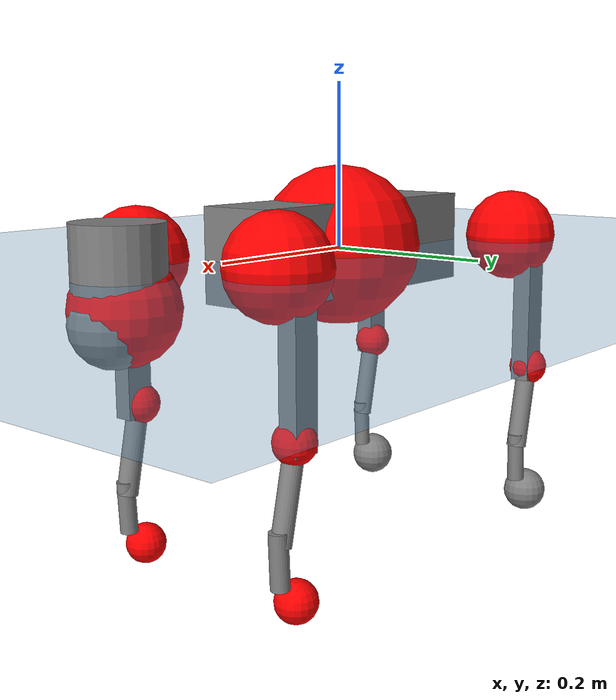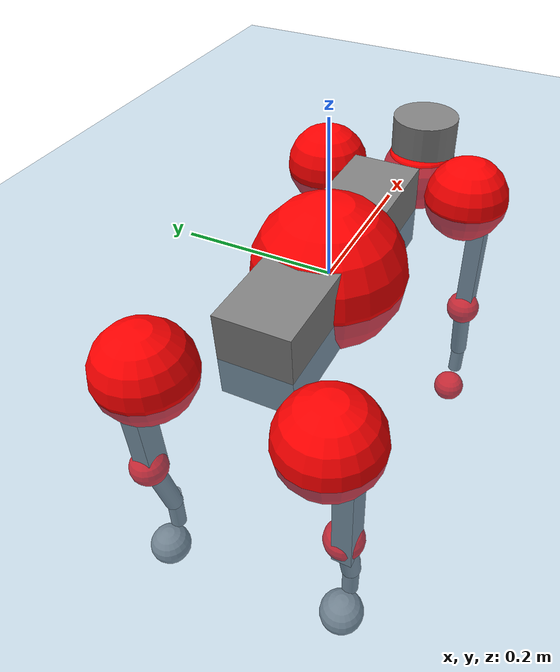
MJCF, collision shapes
<mujoco model="go2">
  <compiler angle="radian" assetdir="assets" balanceinertia="true" inertiafromgeom="false"/>

  <option timestep="0.005" density="1.2" viscosity="2e-05"/>

  <size nkey="1"/>

  <visual>
    <quality shadowsize="8192"/>
    <map shadowclip="0.5"/>
  </visual>

  <default>
    <default class="/">
      <geom contype="0" conaffinity="0" group="1" solref="-1000 -80"/>
      <site size="0.01 0.005 0.005" group="5"/>
      <general forcelimited="true" biastype="affine" gainprm="20" biasprm="0 -20 -0.5"/>
      <default class="go2">
        <joint armature="0.01" damping="0.01" frictionloss="0.2"/>
        <geom condim="1" margin="0.001"/>
        <default class="visual">
          <geom type="mesh" group="2"/>
        </default>
        <default class="collision">
          <geom group="3"/>
          <default class="foot">
            <geom size="0.022 0 0" condim="6" priority="1" friction="0.8 0.02 0.01" solimp="0.015 1 0.022"/>
          </default>
        </default>
        <default class="reward_collision_sphere">
          <geom group="5" rgba="1 0 0 1"/>
        </default>
      </default>
    </default>
  </default>

  <asset>
    <texture type="skybox" colorspace="auto" name="//unnamed_texture_0" builtin="gradient" rgb1="0.95 0.95 0.95" rgb2="0.95 0.95 0.95" width="100" height="600"/>
    <texture type="2d" colorspace="auto" name="texplane" builtin="checker" rgb1="0.345 0.575 0.748" rgb2="0.345 0.575 0.748" markrgb="1 1 1" width="512" height="512"/>
    <material name="MatPlane" class="/" texture="texplane" texuniform="true" texrepeat="2 2" specular="0.9"/>
    <material name="metal" class="/" rgba="0.9 0.95 0.95 1"/>
    <material name="black" class="/" rgba="0 0 0 1"/>
    <material name="white" class="/"/>
    <material name="gray" class="/" rgba="0.671705 0.692426 0.77427 1"/>
    <mesh name="base_0" class="/" file="base_0.obj"/>
    <mesh name="base_1" class="/" file="base_1.obj"/>
    <mesh name="base_2" class="/" file="base_2.obj"/>
    <mesh name="base_3" class="/" file="base_3.obj"/>
    <mesh name="base_4" class="/" file="base_4.obj"/>
    <mesh name="hip_0" class="/" file="hip_0.obj"/>
    <mesh name="hip_1" class="/" file="hip_1.obj"/>
    <mesh name="thigh_0" class="/" file="thigh_0.obj"/>
    <mesh name="thigh_1" class="/" file="thigh_1.obj"/>
    <mesh name="thigh_mirror_0" class="/" file="thigh_mirror_0.obj"/>
    <mesh name="thigh_mirror_1" class="/" file="thigh_mirror_1.obj"/>
    <mesh name="calf_0" class="/" file="calf_0.obj"/>
    <mesh name="calf_1" class="/" file="calf_1.obj"/>
    <mesh name="calf_mirror_0" class="/" file="calf_mirror_0.obj"/>
    <mesh name="calf_mirror_1" class="/" file="calf_mirror_1.obj"/>
    <mesh name="foot" class="/" file="foot.obj"/>
  </asset>

  <worldbody>
    <geom name="floor" class="/" size="100 100 0.125" type="plane" group="0" material="MatPlane"/>
    <light name="toplight_shadow" class="/" pos="0 0 5" dir="0.0990148 0.0990148 -0.990148" type="directional" ambient="0.04 0.04 0.04" diffuse="0.55 0.55 0.55" specular="0.12 0.12 0.12"/>
    <light name="toplight_fill" class="/" pos="0 0 5" dir="0.0990148 0.0990148 -0.990148" type="directional" castshadow="false" ambient="0.04 0.04 0.04" diffuse="0.3 0.3 0.3" specular="0.08 0.08 0.08"/>
    <body name="trunk" childclass="go2" pos="-0.000483649 0.000302767 0.0043896" quat="1 0.000691707 -0.000186598 0.00046612">
      <inertial pos="0.0275872 -0.00813138 -0.00975175" quat="-0.00168044 0.713513 -0.00230005 0.700636" mass="6.713" diaginertia="0.257771 0.0630592 0.008942"/>
      <joint name="//unnamed_joint_0" type="free" armature="0" damping="0" frictionloss="0"/>
      <geom name="//unnamed_geom_1" class="visual" material="black" mesh="base_0"/>
      <geom name="//unnamed_geom_2" class="visual" material="black" mesh="base_1"/>
      <geom name="//unnamed_geom_3" class="visual" material="black" mesh="base_2"/>
      <geom name="//unnamed_geom_4" class="visual" material="white" mesh="base_3"/>
      <geom name="//unnamed_geom_5" class="visual" material="gray" mesh="base_4"/>
      <geom name="trunk_1" class="collision" size="0.183889 0.0457034 0.0557239" type="box"/>
      <geom name="trunk_2" class="collision" size="0.0488807 0.0439926" pos="0.34428 0 0.00817963" type="cylinder"/>
      <geom name="trunk_3" class="collision" size="0.0459478" pos="0.353944 0 -0.0490778"/>
      <geom name="//unnamed_geom_9" class="reward_collision_sphere" size="0.0977613"/>
      <geom name="//unnamed_geom_10" class="reward_collision_sphere" size="0.0586568" pos="0.33824 0 -0.0368083"/>
      <site name="imu" pos="-0.0321221 0.0124517 0.0318102" size="0.00977613"/>
      <camera name="track" pos="0 -1.81376 0" quat="0.707107 0.707107 0 0" mode="trackcom"/>
      <camera name="ego_camera" pos="0.376895 0 0.0368083" quat="-0.5 -0.5 0.5 0.5"/>
      <body name="FL_hip" pos="0.230607 0.0456484 0.00413941" quat="1 0.000151807 -0.000286113 2.98771e-05">
        <inertial pos="1.27937e-05 3.5883e-05 0.00207658" quat="0.494681 0.506788 0.501634 0.49681" mass="0.625406" diaginertia="0.00226403 0.000374399 0.000169003"/>
        <joint name="FL_hip_joint" pos="0 0 0" axis="0.999999 -0.000921072 -0.0013448" stiffness="0.00278018" range="-1.0235 1.0379" armature="0.00807047" damping="0" frictionloss="0.254571"/>
        <geom name="//unnamed_geom_11" class="visual" material="metal" mesh="hip_0"/>
        <geom name="//unnamed_geom_12" class="visual" material="gray" mesh="hip_1"/>
        <geom name="//unnamed_geom_13" class="collision" size="0.0449702 0.0195523" pos="0 0.0725502 0" quat="0.707107 0.707107 0 0" type="cylinder"/>
        <geom name="//unnamed_geom_14" class="reward_collision_sphere" size="0.0586568" pos="0 0.0634814 0"/>
        <body name="FL_thigh" pos="-0.00299879 0.0864612 -0.000878061" quat="1 3.56408e-05 -2.17253e-05 2.91674e-05">
          <inertial pos="-0.00625414 -0.0205802 -0.0243616" quat="0.828166 0.0926818 -0.0246918 0.552215" mass="1.18146" diaginertia="0.0150088 0.00363495 0.000388091"/>
          <joint name="FL_thigh_joint" pos="0 0 0" axis="-0.00389089 0.999972 -0.0064639" stiffness="0.00108842" range="-1.49833 3.46693" armature="0.00988444" damping="0.0181216" frictionloss="0.215136"/>
          <geom name="//unnamed_geom_15" class="visual" material="metal" mesh="thigh_0"/>
          <geom name="//unnamed_geom_16" class="visual" material="gray" mesh="thigh_1"/>
          <geom name="//unnamed_geom_17" class="collision" size="0.104116 0.0119758 0.0166194" pos="0 0 -0.0871131" quat="0.707107 0 0.707107 0" type="box"/>
          <body name="FL_calf" pos="0.000969388 -0.0041844 -0.179166" quat="0.999993 -0.0018435 -0.00333574 3.66136e-05">
            <inertial pos="0.00562751 -0.000554197 -0.115447" quat="0.712186 0.00202486 -0.00328113 0.70198" mass="0.240431" diaginertia="0.00380589 0.000932787 2.11522e-05"/>
            <joint name="FL_calf_joint" pos="0 0 0" axis="-1.04066e-05 1 1.12426e-05" stiffness="0.00891207" range="-2.68769 -0.866869" armature="0.0105422" damping="0" frictionloss="0.23873"/>
            <geom name="//unnamed_geom_18" class="visual" material="gray" mesh="calf_0"/>
            <geom name="//unnamed_geom_19" class="visual" material="black" mesh="calf_1"/>
            <geom name="FL_calf0" class="collision" size="0.0117314 0.0586568" pos="0.00966399 0 -0.0490778" quat="0.994493 0 -0.104807 0" type="cylinder"/>
            <geom name="//unnamed_geom_21" class="collision" size="0.0107537 0.0317724" pos="0.02416 0 -0.121059" quat="0.999688 0 0.0249974 0" type="cylinder"/>
            <geom name="//unnamed_geom_22" class="visual" pos="0 0 -0.174226" quat="1 0 0 0" material="black" mesh="foot"/>
            <geom name="FL_foot" class="foot" size="0.0159209" pos="-0.002416 0 -0.174226"/>
            <geom name="//unnamed_geom_24" class="reward_collision_sphere" size="0.0244403"/>
            <geom name="//unnamed_geom_25" class="reward_collision_sphere" size="0.0244403" pos="-0.002416 0 -0.174226"/>
            <site name="FL_foot" class="foot" pos="-0.002416 0 -0.174226" size="0.00977613"/>
          </body>
        </body>
      </body>
      <body name="FR_hip" pos="0.23375 -0.0395519 -0.00148356" quat="0.999996 0.000523057 0.00090511 -0.0026443">
        <inertial pos="-0.00562837 -0.000245941 -0.00198075" quat="0.498751 0.506035 0.496916 0.498248" mass="0.691208" diaginertia="0.00241174 0.000407235 0.000174091"/>
        <joint name="FR_hip_joint" pos="0 0 0" axis="0.999901 -0.00143849 -0.0139838" range="-1.15281 1.19773" armature="0.00905963" damping="0.0101176" frictionloss="0.229823"/>
        <geom name="//unnamed_geom_26" class="visual" pos="0 7.74586e-10 3.32236e-08" quat="4.63268e-05 1 0 0" material="metal" mesh="hip_0"/>
        <geom name="//unnamed_geom_27" class="visual" pos="0 1.2557e-09 -8.21746e-08" quat="4.63268e-05 1 0 0" material="gray" mesh="hip_1"/>
        <geom name="//unnamed_geom_28" class="collision" size="0.0449702 0.0195523" pos="0 -0.0725502 0" quat="0.707107 0.707107 0 0" type="cylinder"/>
        <geom name="//unnamed_geom_29" class="reward_collision_sphere" size="0.0586568" pos="0 -0.0634814 0"/>
        <body name="FR_thigh" pos="-0.00883703 -0.089649 -0.000667685" quat="1 -0.00013971 1.56736e-05 3.57119e-05">
          <inertial pos="-0.0018397 0.018367 -0.0265307" quat="0.551839 -0.0199988 0.0829751 0.829571" mass="0.97534" diaginertia="0.0148235 0.00321886 0.00028965"/>
          <joint name="FR_thigh_joint" pos="0 0 0" axis="-0.028923 -0.999165 0.0288537" range="-3.67867 1.72175" armature="0.010464" damping="0.0318887" frictionloss="0.185787"/>
          <geom name="//unnamed_geom_30" class="visual" material="metal" mesh="thigh_mirror_0"/>
          <geom name="//unnamed_geom_31" class="visual" material="gray" mesh="thigh_mirror_1"/>
          <geom name="//unnamed_geom_32" class="collision" size="0.104116 0.0119758 0.0166194" pos="0 0 -0.0871131" quat="0.707107 0 0.707107 0" type="box"/>
          <body name="FR_calf" pos="-0.00778776 0.000975935 -0.176463" quat="1 -0.000369624 0.000241206 0.000546298">
            <inertial pos="0.00833987 -0.000436237 -0.124395" quat="0.702712 -0.00592045 0.00193673 0.711447" mass="0.2538" diaginertia="0.00370328 0.000882469 1.9135e-05"/>
            <joint name="FR_calf_joint" pos="0 0 0" axis="0.0426338 -0.998794 0.0243588" stiffness="0.00340345" range="0.846776 2.84247" armature="0.00965206" damping="0.0146351" frictionloss="0.287597"/>
            <geom name="//unnamed_geom_33" class="visual" material="gray" mesh="calf_mirror_0"/>
            <geom name="//unnamed_geom_34" class="visual" material="black" mesh="calf_mirror_1"/>
            <geom name="FR_calf0" class="collision" size="0.012709 0.0586568" pos="0.01208 0 -0.0490778" quat="0.995004 0 -0.0998334 0" type="cylinder"/>
            <geom name="//unnamed_geom_36" class="collision" size="0.0107537 0.0317724" pos="0.02416 0 -0.121059" quat="0.999688 0 0.0249974 0" type="cylinder"/>
            <geom name="//unnamed_geom_37" class="visual" pos="0 0 -0.174226" quat="1 0 0 0" material="black" mesh="foot"/>
            <geom name="FR_foot" class="foot" size="0.0222275" pos="-0.002416 0 -0.174226"/>
            <geom name="//unnamed_geom_39" class="reward_collision_sphere" size="0.0244403"/>
            <geom name="//unnamed_geom_40" class="reward_collision_sphere" size="0.0244403" pos="-0.002416 0 -0.174226"/>
            <site name="FR_foot" class="foot" pos="-0.002416 0 -0.174226" size="0.00977613"/>
          </body>
        </body>
      </body>
      <body name="RL_hip" pos="-0.234979 0.037331 7.54174e-05" quat="0.999999 -0.00039107 -0.000512873 0.00119541">
        <inertial pos="0.00840512 0.00801465 0.00166673" quat="0.5292 0.522651 0.466711 0.478502" mass="0.71308" diaginertia="0.00227783 0.000350073 0.000179372"/>
        <joint name="RL_hip_joint" pos="0 0 0" axis="-0.999774 0.0204575 -0.00583575" stiffness="0.0259873" range="-1.02658 1.08516" armature="0.0095343" damping="0.0243985" frictionloss="0.174812"/>
        <geom name="//unnamed_geom_41" class="visual" pos="-3.39783e-09 0 -6.66052e-07" quat="4.63268e-05 0 1 0" material="metal" mesh="hip_0"/>
        <geom name="//unnamed_geom_42" class="visual" pos="-5.50828e-09 0 -5.90693e-07" quat="4.63268e-05 0 1 0" material="gray" mesh="hip_1"/>
        <geom name="//unnamed_geom_43" class="collision" size="0.0449702 0.0195523" pos="0 0.0725502 0" quat="0.707107 0.707107 0 0" type="cylinder"/>
        <geom name="//unnamed_geom_44" class="reward_collision_sphere" size="0.0586568" pos="0 0.0634814 0"/>
        <body name="RL_thigh" pos="0.000107466 0.092768 -0.000453258" quat="0.999999 -0.000807679 0.000800754 -5.48825e-05">
          <inertial pos="-0.00424902 -0.0159408 -0.0263628" quat="0.828217 0.0874759 -0.0188823 0.553217" mass="1.04191" diaginertia="0.0135703 0.00334208 0.000284149"/>
          <joint name="RL_thigh_joint" pos="0 0 0" axis="-0.00379593 0.999987 0.00349165" range="-0.50978 4.53069" armature="0.0101674" damping="0.00944506" frictionloss="0.18952"/>
          <geom name="//unnamed_geom_45" class="visual" material="metal" mesh="thigh_0"/>
          <geom name="//unnamed_geom_46" class="visual" material="gray" mesh="thigh_1"/>
          <geom name="//unnamed_geom_47" class="collision" size="0.104116 0.0119758 0.0166194" pos="0 0 -0.0871131" quat="0.707107 0 0.707107 0" type="box"/>
          <body name="RL_calf" pos="-0.00505818 0.000714397 -0.175117" quat="0.999996 -0.00255282 0.000619885 -0.00128297">
            <inertial pos="0.00237662 -0.000385222 -0.111665" quat="0.710061 0.00138538 -0.00474252 0.704123" mass="0.214108" diaginertia="0.00334747 0.000713322 1.49009e-05"/>
            <joint name="RL_calf_joint" pos="0 0 0" axis="-0.0157889 0.999846 -0.00769909" stiffness="0.00634815" range="-2.70865 -0.636137" armature="0.0100482" damping="0" frictionloss="0.17801"/>
            <geom name="//unnamed_geom_48" class="visual" material="gray" mesh="calf_0"/>
            <geom name="//unnamed_geom_49" class="visual" material="black" mesh="calf_1"/>
            <geom name="RL_calf0" class="collision" size="0.012709 0.0586568" pos="0.01208 0 -0.0490778" quat="0.995004 0 -0.0998334 0" type="cylinder"/>
            <geom name="//unnamed_geom_51" class="collision" size="0.0107537 0.0317724" pos="0.02416 0 -0.121059" quat="0.999688 0 0.0249974 0" type="cylinder"/>
            <geom name="//unnamed_geom_52" class="visual" pos="0 0 -0.174226" quat="1 0 0 0" material="black" mesh="foot"/>
            <geom name="RL_foot" class="foot" size="0.0277717" pos="-0.002416 0 -0.174226"/>
            <geom name="//unnamed_geom_54" class="reward_collision_sphere" size="0.0244403"/>
            <geom name="//unnamed_geom_55" class="reward_collision_sphere" size="0.0244403" pos="-0.002416 0 -0.174226"/>
            <site name="RL_foot" class="foot" pos="-0.002416 0 -0.174226" size="0.00977613"/>
          </body>
        </body>
      </body>
      <body name="RR_hip" pos="-0.233863 -0.0471775 -0.00502235" quat="0.999995 0.00100083 -0.00111367 -0.0029194">
        <inertial pos="0.00766439 -0.0035276 0.00122214" quat="0.482618 0.475969 0.495034 0.543576" mass="0.657832" diaginertia="0.00228044 0.000391511 0.000185316"/>
        <joint name="RR_hip_joint" pos="0 0 0" axis="-1 7.1096e-05 -2.66594e-05" stiffness="0.000216272" range="-0.920717 1.06773" armature="0.0133827" damping="0.0247646" frictionloss="0.16282"/>
        <geom name="//unnamed_geom_56" class="visual" pos="3.3874e-09 7.74586e-10 -6.99276e-07" quat="2.14617e-09 4.63268e-05 4.63268e-05 -1" material="metal" mesh="hip_0"/>
        <geom name="//unnamed_geom_57" class="visual" pos="5.53407e-09 1.2557e-09 -5.08519e-07" quat="2.14617e-09 4.63268e-05 4.63268e-05 -1" material="gray" mesh="hip_1"/>
        <geom name="//unnamed_geom_58" class="collision" size="0.0449702 0.0195523" pos="0 -0.0725502 0" quat="0.707107 0.707107 0 0" type="cylinder"/>
        <geom name="//unnamed_geom_59" class="reward_collision_sphere" size="0.0586568" pos="0 -0.0634814 0"/>
        <body name="RR_thigh" pos="-0.00137714 -0.0859109 0.00812707" quat="1 -0.000349593 -0.000239354 0.000455688">
          <inertial pos="-0.00466367 0.0105908 -0.0294549" quat="0.559122 -0.0410993 0.0978361 0.822266" mass="1.20778" diaginertia="0.0167148 0.00393742 0.000351225"/>
          <joint name="RR_thigh_joint" pos="0 0 0" axis="0.00935688 -0.999863 0.013667" range="-4.55791 0.676682" armature="0.00471581" damping="0" frictionloss="0.196823"/>
          <geom name="//unnamed_geom_60" class="visual" material="metal" mesh="thigh_mirror_0"/>
          <geom name="//unnamed_geom_61" class="visual" material="gray" mesh="thigh_mirror_1"/>
          <geom name="//unnamed_geom_62" class="collision" size="0.104116 0.0119758 0.0166194" pos="0 0 -0.0871131" quat="0.707107 0 0.707107 0" type="box"/>
          <body name="RR_calf" pos="0.00366897 0.00546915 -0.174371" quat="0.999997 -0.00035585 -0.00140519 -0.00184634">
            <inertial pos="0.00567566 -0.00102188 -0.116902" quat="0.678358 -0.0263118 -0.00835347 0.734212" mass="0.252032" diaginertia="0.00399793 0.000917649 1.75305e-05"/>
            <joint name="RR_calf_joint" pos="0 0 0" axis="-0.0208339 -0.999359 -0.0291109" range="0.727208 2.58446" armature="0.00893258" damping="0" frictionloss="0.212625"/>
            <geom name="//unnamed_geom_63" class="visual" material="gray" mesh="calf_mirror_0"/>
            <geom name="//unnamed_geom_64" class="visual" material="black" mesh="calf_mirror_1"/>
            <geom name="RR_calf0" class="collision" size="0.012709 0.0586568" pos="0.01208 0 -0.0490778" quat="0.995004 0 -0.0998334 0" type="cylinder"/>
            <geom name="//unnamed_geom_66" class="collision" size="0.0107537 0.0317724" pos="0.02416 0 -0.121059" quat="0.999688 0 0.0249974 0" type="cylinder"/>
            <geom name="//unnamed_geom_67" class="visual" pos="0 0 -0.174226" quat="1 0 0 0" material="black" mesh="foot"/>
            <geom name="RR_foot" class="foot" size="0.0290311" pos="-0.002416 0 -0.174226"/>
            <geom name="//unnamed_geom_69" class="reward_collision_sphere" size="0.0244403"/>
            <geom name="//unnamed_geom_70" class="reward_collision_sphere" size="0.0244403" pos="-0.002416 0 -0.174226"/>
            <site name="RR_foot" class="foot" pos="-0.002416 0 -0.174226" size="0.00977613"/>
          </body>
        </body>
      </body>
    </body>
  </worldbody>

  <contact>
    <pair class="/" geom1="floor" geom2="FL_foot" name="//unnamed_contact_0"/>
    <pair class="/" geom1="floor" geom2="FR_foot" name="//unnamed_contact_1"/>
    <pair class="/" geom1="floor" geom2="RL_foot" name="//unnamed_contact_2"/>
    <pair class="/" geom1="floor" geom2="RR_foot" name="//unnamed_contact_3"/>
  </contact>

  <actuator>
    <general name="FL_hip" class="/" joint="FL_hip_joint" forcerange="-25.4571 25.4571" gainprm="15.7412" biasprm="0 -15.7412 -0.475739"/>
    <general name="FL_thigh" class="/" joint="FL_thigh_joint" forcerange="-31.2636 31.2636" gainprm="15.7412" biasprm="0 -15.7412 -0.475739"/>
    <general name="FL_calf" class="/" joint="FL_calf_joint" forcerange="-45.526 45.526" gainprm="15.7412" biasprm="0 -15.7412 -0.475739"/>
    <general name="FR_hip" class="/" joint="FR_hip_joint" forcerange="-22.9744 22.9744" gainprm="15.7412" biasprm="0 -15.7412 -0.475739"/>
    <general name="FR_thigh" class="/" joint="FR_thigh_joint" forcerange="-22.8768 22.8768" gainprm="15.7412" biasprm="0 -15.7412 -0.475739"/>
    <general name="FR_calf" class="/" joint="FR_calf_joint" forcerange="-46.8168 46.8168" gainprm="15.7412" biasprm="0 -15.7412 -0.475739"/>
    <general name="RL_hip" class="/" joint="RL_hip_joint" forcerange="-19.8698 19.8698" gainprm="15.7412" biasprm="0 -15.7412 -0.475739"/>
    <general name="RL_thigh" class="/" joint="RL_thigh_joint" forcerange="-23.2553 23.2553" gainprm="15.7412" biasprm="0 -15.7412 -0.475739"/>
    <general name="RL_calf" class="/" joint="RL_calf_joint" forcerange="-48.08 48.08" gainprm="15.7412" biasprm="0 -15.7412 -0.475739"/>
    <general name="RR_hip" class="/" joint="RR_hip_joint" forcerange="-31.0521 31.0521" gainprm="15.7412" biasprm="0 -15.7412 -0.475739"/>
    <general name="RR_thigh" class="/" joint="RR_thigh_joint" forcerange="-21.9022 21.9022" gainprm="15.7412" biasprm="0 -15.7412 -0.475739"/>
    <general name="RR_calf" class="/" joint="RR_calf_joint" forcerange="-42.756 42.756" gainprm="15.7412" biasprm="0 -15.7412 -0.475739"/>
  </actuator>

  <sensor>
    <gyro site="imu" name="imu_angular_velocity"/>
    <velocimeter site="imu" name="imu_linear_velocity"/>
    <framelinvel objtype="site" objname="FL_foot" name="FL_foot_global_linear_velocity"/>
    <framelinvel objtype="site" objname="FR_foot" name="FR_foot_global_linear_velocity"/>
    <framelinvel objtype="site" objname="RL_foot" name="RL_foot_global_linear_velocity"/>
    <framelinvel objtype="site" objname="RR_foot" name="RR_foot_global_linear_velocity"/>
  </sensor>

  <keyframe>
    <key name="home" qpos="0 0 0.325 1 0 0 0 0.1 0.8 -1.5 -0.1 -0.8 1.5 -0.1 0.8 -1.5 0.1 -0.8 1.5"/>
  </keyframe>
</mujoco>
